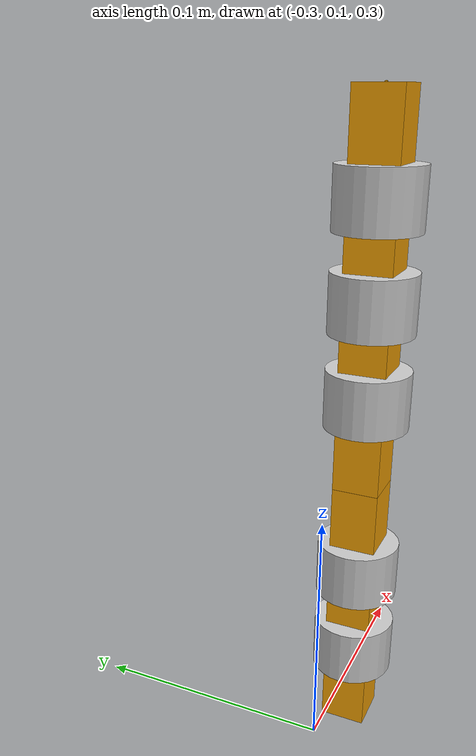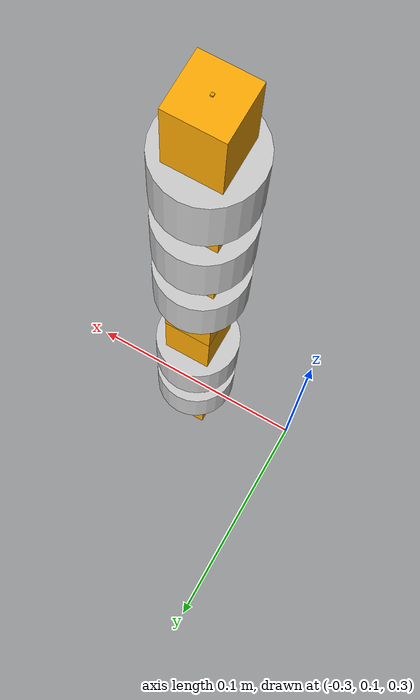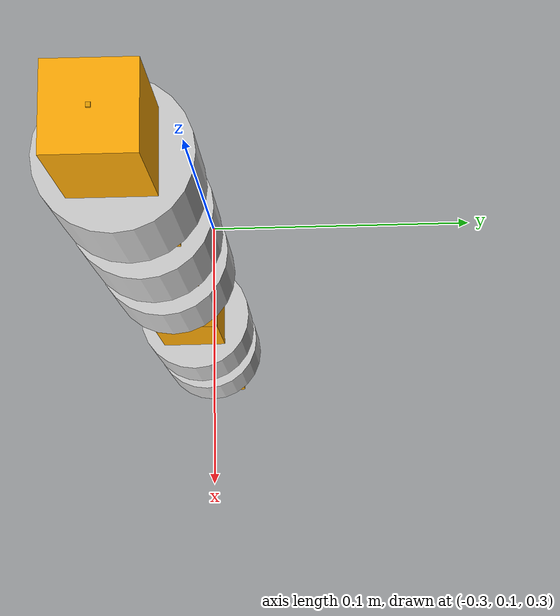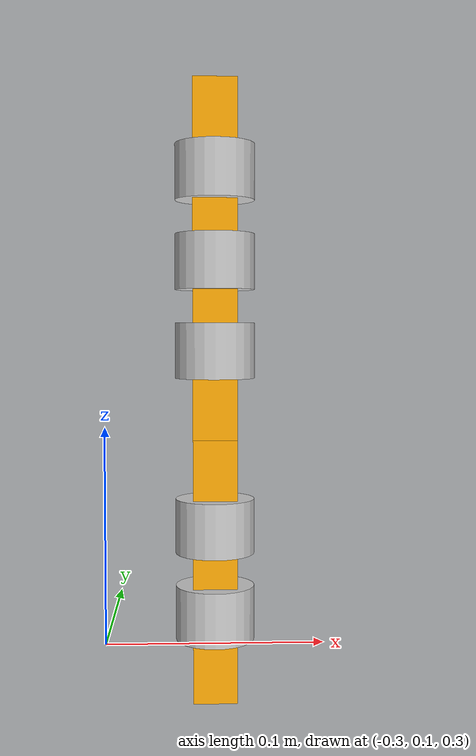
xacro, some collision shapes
<?xml version="1.0"?>
<robot name="arm" xmlns:xacro="http://www.ros.org/wiki/xacro">

  <xacro:property name="PI" value="3.14159265359"/>

  <!-- Joints Control in Gazebo -->
  <gazebo>
    <plugin name="gazebo_ros_control" filename="libgazebo_ros_control.so"/>
  </gazebo>

  <!-- Geometrical properties -->
  <xacro:property name="link_side"          value="0.02"/>
  <xacro:property name="joint_radius"       value="0.018"/>
  <xacro:property name="joint_length"       value="0.025"/>
  <xacro:property name="shoulder_length"    value="0.04"/>
  <xacro:property name="wrist_length"       value="0.04"/>

  <!-- Materials -->
  <material name="orange">
    <color rgba="1.00 0.67 0.02 1.00"/>
  </material>

  <material name="gray">
    <color rgba="0.80 0.80 0.80 1.00"/>
  </material>

  <!-- Generates a box visual/collision/inertial -->
  <xacro:macro name="prism_vci" params="side length mass:=1 *origin">

    <xacro:macro name="prism_geometry">
      <xacro:insert_block name="origin"/>
      <geometry>
        <box size="${side} ${side} ${length}"/>
      </geometry>
    </xacro:macro>

    <visual>
      <xacro:prism_geometry/>
      <material name="orange"/>
    </visual>

    <collision>
      <xacro:prism_geometry/>
    </collision>

    <inertial>
      <xacro:insert_block name="origin"/>
      <mass value="${mass}"/>
      <inertia ixx="${(mass/12)*(side*side+length*length)}"
               iyy="${(mass/12)*(side*side+length*length)}"
               izz="${(mass/6)*(side*side)}"
               ixy="0" ixz="0" iyz="0"/>
    </inertial>

  </xacro:macro>

  <!-- Generates a cylinder visual/collision -->
  <xacro:macro name="cylinder_vc" params="radius length *origin">

    <xacro:macro name="cylinder_geometry">
      <xacro:insert_block name="origin"/>
      <geometry>
        <cylinder length="${length}" radius="${radius}"/>
      </geometry>
    </xacro:macro>

    <visual>
      <xacro:cylinder_geometry/>
      <material name="gray"/>
    </visual>

    <collision>
      <xacro:cylinder_geometry/>
    </collision>

  </xacro:macro>

  <!-- Generates child joint of parent -->
  <xacro:macro name="arm_joint" params="child parent dist:=0 axis joint_type lower upper">

    <!--xacro:unless value="${child == 'arm'}"-->
        <joint name="${parent}_${child}_joint" type="${joint_type}">
            <origin xyz="0 0 ${dist}" rpy="0 0 0"/>
            <parent link="${parent}"/>
            <child link="${child}"/>
            <axis xyz="${axis}"/>

            <!--xacro:unless value="${joint_type == 'prismatic'}"-->
                <limit effort="40.0"
                       velocity="1.0"
                       lower="${lower}"
                       upper="${upper}"/>
            <!--/xacro:unless-->

        </joint>
    <!--/xacro:unless-->

    <!-- Required for ROS control -->
    <transmission name="${parent}_${child}_transmission">
      <type>transmission_interface/SimpleTransmission</type>
      <joint name="${parent}_${child}_joint">
        <hardwareInterface>hardware_interface/EffortJointInterface</hardwareInterface>
      </joint>
      <actuator name="${parent}_${child}_actuator"/>
    </transmission>

    <link name="${parent}">

      <xacro:prism_vci length="${dist}" side="${link_side}">
        <origin xyz="0 0 ${dist/2}" rpy="0 0 0"/>
      </xacro:prism_vci>

      <xacro:cylinder_vc radius="${joint_radius}" length="${joint_length}">

        <xacro:if value="${axis=='0 0 1'}">
          <origin xyz="0 0 ${dist}" rpy="0 0 0"/>
        </xacro:if>

        <xacro:if value="${axis=='1 0 0'}">
          <origin xyz="0 0 ${dist}" rpy="0 ${PI/2} 0"/>
        </xacro:if>

        <xacro:if value="${axis=='0 1 0'}">
          <origin xyz="0 0 ${dist}" rpy="${PI/2} 0 0"/>
        </xacro:if>

      </xacro:cylinder_vc>

    </link>

    <gazebo reference="${parent}">
      <material>Gazebo/Orange</material>
    </gazebo>

  </xacro:macro>

  <!-- Uncomment for RViz with fake joints -->
  <!-- Uncomment for Gazebo -->
  <link name="base_link"/>

  <!-- Uncomment for RViz with fake joints -->
  <!-- Uncomment for Gazebo -->
  <!-- Arm fixed to world frame  -->
  <joint name="shoulder_joint" type="fixed">
      <origin xyz="-0.25 0.10 0.275" rpy="0 0 0"/>
      <parent link="base_link"/>
      <child link="shoulder_yaw"/>
  </joint>

  <!-- Joints Chain -->
  <xacro:arm_joint parent="shoulder_yaw"      child="shoulder_roll"   axis="0 0 1" dist="${shoulder_length}"    joint_type="revolute"   lower="${-PI}"      upper="${PI}"   />
  <xacro:arm_joint parent="shoulder_roll"     child="shoulder_pitch"  axis="1 0 0" dist="${shoulder_length}"    joint_type="revolute"   lower="${-PI/2}"    upper="${PI/2}" />
  <xacro:arm_joint parent="shoulder_pitch"    child="arm_length"      axis="0 1 0" dist="${shoulder_length}"    joint_type="revolute"   lower="${-PI/2}"    upper="${PI/2}" />
  <xacro:arm_joint parent="arm_length"        child="wrist_yaw"       axis="0 0 1" dist="${shoulder_length}"    joint_type="prismatic"  lower="0"           upper="2"       />
  <xacro:arm_joint parent="wrist_yaw"         child="wrist_roll"      axis="0 0 1" dist="${wrist_length}"       joint_type="revolute"   lower="${-PI}"      upper="${PI}"   />
  <xacro:arm_joint parent="wrist_roll"        child="wrist_pitch"     axis="0 1 0" dist="${wrist_length}"       joint_type="revolute"   lower="${-PI}"      upper="${PI}"   />
  <xacro:arm_joint parent="wrist_pitch"       child="finger"          axis="1 0 0" dist="${wrist_length}"       joint_type="revolute"   lower="${-PI}"      upper="${PI}"   />

  <!-- End effector -->
  <link name="finger">
      <inertial>
        <mass value="1.477" />
        <origin xyz="0 0 0" />
        <inertia ixx="0.01152" ixy="0.0" ixz="0.0" iyy="0.01152" iyz="0.0" izz="0.0218" />
      </inertial>

      <visual>
        <origin xyz="0 0 0" rpy="0 0 0" />
        <geometry>
          <mesh filename="package://arm_description/meshes/ardrone.dae"/>
        </geometry>
      </visual>

      <collision>
        <origin xyz="0 0 0" rpy="0 0 0" />
        <geometry>
          <!--mesh filename="package://arm_description/urdf/ardrone.dae"/-->
          <box size="0.001 0.001 0.001"/>
        </geometry>
      </collision>
  </link>

</robot>
